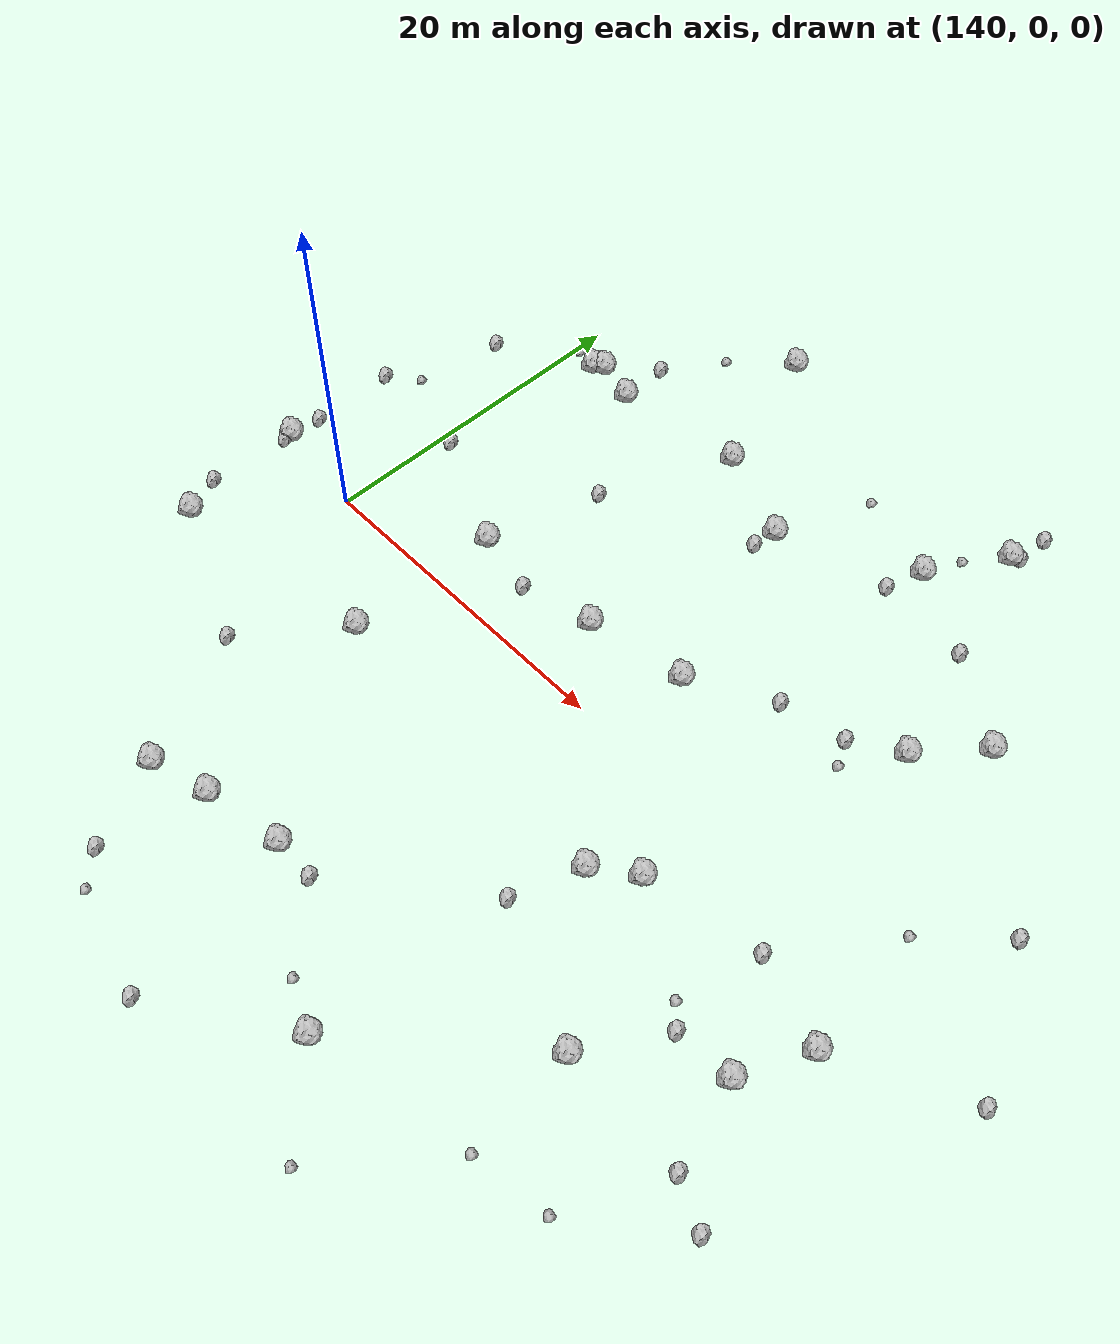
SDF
<sdf version="1.6">
 <world name="default">
  <include><uri>model://sun</uri></include>
  <model name="rock1_4_2">
   <include><uri>model://rock1</uri><pose>145.05575522781837 17.58735991776861 0.5 0 0 0</pose></include>
  </model>
  <model name="rock1_4_3">
   <include><uri>model://rock1</uri><pose>180.37702122393236 -9.30317015053728 0.5 0 0 0</pose></include>
  </model>
  <model name="rock1_4_4">
   <include><uri>model://rock1</uri><pose>150.79813441896175 -17.752827099190586 0.5 0 0 0</pose></include>
  </model>
  <model name="rock1_4_5">
   <include><uri>model://rock1</uri><pose>165.08276488820587 -22.341430315111523 0.5 0 0 0</pose></include>
  </model>
  <model name="rock1_4_6">
   <include><uri>model://rock1</uri><pose>173.9305961576893 10.408725925086145 0.5 0 0 0</pose></include>
  </model>
  <model name="rock1_4_7">
   <include><uri>model://rock1</uri><pose>167.40127897388797 -6.554167059590959 0.5 0 0 0</pose></include>
  </model>
  <model name="rock1_4_8">
   <include><uri>model://rock1</uri><pose>155.6771831454854 -16.90790979193177 0.5 0 0 0</pose></include>
  </model>
  <model name="rock1_4_9">
   <include><uri>model://rock1</uri><pose>153.04713827648283 18.592961131113462 0.5 0 0 0</pose></include>
  </model>
  <model name="rock1_4_10">
   <include><uri>model://rock1</uri><pose>147.19976830188776 -18.71143634331915 0.5 0 0 0</pose></include>
  </model>
  <model name="rock1_4_11">
   <include><uri>model://rock1</uri><pose>147.5923310190738 -5.334490372366723 0.5 0 0 0</pose></include>
  </model>
  <model name="rock1_4_12">
   <include><uri>model://rock1</uri><pose>169.10893010115478 24.66134120700724 0.5 0 0 0</pose></include>
  </model>
  <model name="rock1_4_13">
   <include><uri>model://rock1</uri><pose>147.85737318148412 4.020662864241061 0.5 0 0 0</pose></include>
  </model>
  <model name="rock1_4_14">
   <include><uri>model://rock1</uri><pose>166.43004843763785 20.24064888439471 0.5 0 0 0</pose></include>
  </model>
  <model name="rock1_4_15">
   <include><uri>model://rock1</uri><pose>169.74700443204713 -4.805861243522244 0.5 0 0 0</pose></include>
  </model>
  <model name="rock1_4_16">
   <include><uri>model://rock1</uri><pose>133.73264732210075 0.9279420497621089 0.5 0 0 0</pose></include>
  </model>
  <model name="rock1_4_17">
   <include><uri>model://rock1</uri><pose>156.23852200725054 4.207615201311107 0.5 0 0 0</pose></include>
  </model>
  <model name="rock1_4_18">
   <include><uri>model://rock1</uri><pose>150.31061322342515 26.984189056214788 0.5 0 0 0</pose></include>
  </model>
  <model name="rock1_4_19">
   <include><uri>model://rock1</uri><pose>141.87665724861773 17.843716909434583 0.5 0 0 0</pose></include>
  </model>
  <model name="rock1_4_20">
   <include><uri>model://rock1</uri><pose>176.79910431997013 13.882667820935865 0.5 0 0 0</pose></include>
  </model>
  <model name="rock1_4_21">
   <include><uri>model://rock1</uri><pose>182.13538107820358 -5.35542914708266 0.5 0 0 0</pose></include>
  </model>
  <model name="rock1_4_22">
   <include><uri>model://rock1</uri><pose>142.43169112469488 18.269674866835658 0.5 0 0 0</pose></include>
  </model>
  <model name="rock1_4_23">
   <include><uri>model://rock1</uri><pose>158.7128254010412 16.315598399079434 0.5 0 0 0</pose></include>
  </model>
  <model name="rock1_4_24">
   <include><uri>model://rock1</uri><pose>174.2039477241246 -14.023712475516433 0.5 0 0 0</pose></include>
  </model>
  <model name="rock1_4_25">
   <include><uri>model://rock1</uri><pose>162.31709201130843 5.246420683270976 0.5 0 0 0</pose></include>
  </model>
  <model name="rock1_4_26">
   <include><uri>model://rock1</uri><pose>134.49290726423916 -6.961653552030928 0.5 0 0 0</pose></include>
  </model>
  <model name="rock2_4_0">
   <include><uri>model://rock2</uri><pose>149.74214206856425 10.953456955177522 0.3 0 0 0</pose></include>
  </model>
  <model name="rock2_4_1">
   <include><uri>model://rock2</uri><pose>184.9167843664016 6.217402446600417 0.3 0 0 0</pose></include>
  </model>
  <model name="rock2_4_2">
   <include><uri>model://rock2</uri><pose>169.5557137458531 24.98692216720731 0.3 0 0 0</pose></include>
  </model>
  <model name="rock2_4_3">
   <include><uri>model://rock2</uri><pose>133.94325775699014 2.8341005167055826 0.3 0 0 0</pose></include>
  </model>
  <model name="rock2_4_4">
   <include><uri>model://rock2</uri><pose>167.1291859580395 7.927110289101748 0.3 0 0 0</pose></include>
  </model>
  <model name="rock2_4_5">
   <include><uri>model://rock2</uri><pose>133.56427442344017 -4.680058692409357 0.3 0 0 0</pose></include>
  </model>
  <model name="rock2_4_6">
   <include><uri>model://rock2</uri><pose>144.99824015099048 20.60333560922861 0.3 0 0 0</pose></include>
  </model>
  <model name="rock2_4_7">
   <include><uri>model://rock2</uri><pose>157.67793849990153 -27.34325720639478 0.3 0 0 0</pose></include>
  </model>
  <model name="rock2_4_8">
   <include><uri>model://rock2</uri><pose>189.49182642784078 -1.7161944207407842 0.3 0 0 0</pose></include>
  </model>
  <model name="rock2_4_9">
   <include><uri>model://rock2</uri><pose>184.63264512846862 -15.579182053084264 0.3 0 0 0</pose></include>
  </model>
  <model name="rock2_4_10">
   <include><uri>model://rock2</uri><pose>158.31045241446554 -16.997193719079952 0.3 0 0 0</pose></include>
  </model>
  <model name="rock2_4_11">
   <include><uri>model://rock2</uri><pose>171.56110273999832 17.401807177313906 0.3 0 0 0</pose></include>
  </model>
  <model name="rock2_4_12">
   <include><uri>model://rock2</uri><pose>165.74568891360812 17.954071934424107 0.3 0 0 0</pose></include>
  </model>
  <model name="rock2_4_13">
   <include><uri>model://rock2</uri><pose>143.33275155631023 -10.96263797181441 0.3 0 0 0</pose></include>
  </model>
  <model name="rock2_4_14">
   <include><uri>model://rock2</uri><pose>171.11674557045862 8.676251653415825 0.3 0 0 0</pose></include>
  </model>
  <model name="rock2_4_15">
   <include><uri>model://rock2</uri><pose>181.91118626349018 -14.315372356214471 0.3 0 0 0</pose></include>
  </model>
  <model name="rock2_4_16">
   <include><uri>model://rock2</uri><pose>140.75644106715134 7.331405648239553 0.3 0 0 0</pose></include>
  </model>
  <model name="rock2_4_17">
   <include><uri>model://rock2</uri><pose>166.03414962067552 -10.564948431459243 0.3 0 0 0</pose></include>
  </model>
  <model name="rock2_4_18">
   <include><uri>model://rock2</uri><pose>176.88074396088302 -9.487451074820296 0.3 0 0 0</pose></include>
  </model>
  <model name="rock2_4_19">
   <include><uri>model://rock2</uri><pose>169.6316514548064 27.03447310728518 0.3 0 0 0</pose></include>
  </model>
  <model name="rock2_4_20">
   <include><uri>model://rock2</uri><pose>176.8451141283861 -3.546732270413589 0.3 0 0 0</pose></include>
  </model>
  <model name="rock2_4_21">
   <include><uri>model://rock2</uri><pose>136.40687851289462 14.771125419684004 0.3 0 0 0</pose></include>
  </model>
  <model name="rock2_4_22">
   <include><uri>model://rock2</uri><pose>149.56496404696944 -23.818927772419464 0.3 0 0 0</pose></include>
  </model>
  <model name="rock2_4_23">
   <include><uri>model://rock2</uri><pose>158.5353234657057 14.809988922533186 0.3 0 0 0</pose></include>
  </model>
  <model name="rock2_4_24">
   <include><uri>model://rock2</uri><pose>133.87194103989557 8.018114547975166 0.3 0 0 0</pose></include>
  </model>
  <model name="rock2_4_25">
   <include><uri>model://rock2</uri><pose>133.8365828346148 0.3405010578421397 0.3 0 0 0</pose></include>
  </model>
  <model name="rock2_4_26">
   <include><uri>model://rock2</uri><pose>151.80651068246607 3.1862704037751968 0.3 0 0 0</pose></include>
  </model>
  <model name="rock3_4_0">
   <include><uri>model://rock3</uri><pose>179.36031406135308 -19.947498577873986 0.2 0 0 0</pose></include>
  </model>
  <model name="rock3_4_1">
   <include><uri>model://rock3</uri><pose>147.16783415247718 24.039323604436134 0.2 0 0 0</pose></include>
  </model>
  <model name="rock3_4_2">
   <include><uri>model://rock3</uri><pose>174.7987676171117 -20.587535217017876 0.2 0 0 0</pose></include>
  </model>
  <model name="rock3_4_3">
   <include><uri>model://rock3</uri><pose>181.07980997068643 2.3788886648099776 0.2 0 0 0</pose></include>
  </model>
  <model name="rock3_4_4">
   <include><uri>model://rock3</uri><pose>160.94435417542877 21.986874766089386 0.2 0 0 0</pose></include>
  </model>
  <model name="rock3_4_5">
   <include><uri>model://rock3</uri><pose>171.91249611420744 7.186358029470469 0.2 0 0 0</pose></include>
  </model>
  <model name="rock3_4_6">
   <include><uri>model://rock3</uri><pose>162.16779891080756 -21.073959323945218 0.2 0 0 0</pose></include>
  </model>
  <model name="rock3_4_7">
   <include><uri>model://rock3</uri><pose>151.19623072595257 -25.60541268991117 0.2 0 0 0</pose></include>
  </model>
  <model name="rock3_4_8">
   <include><uri>model://rock3</uri><pose>135.54766228162714 9.409358982414304 0.2 0 0 0</pose></include>
  </model>
  <model name="rock3_4_9">
   <include><uri>model://rock3</uri><pose>175.7067975165475 -8.411566237142914 0.2 0 0 0</pose></include>
  </model>
  <model name="rock3_4_10">
   <include><uri>model://rock3</uri><pose>140.38306604158538 18.099042349734212 0.2 0 0 0</pose></include>
  </model>
  <model name="rock3_4_11">
   <include><uri>model://rock3</uri><pose>169.64236917380885 -26.973247922409204 0.2 0 0 0</pose></include>
  </model>
  <model name="rock3_4_12">
   <include><uri>model://rock3</uri><pose>167.3971415711749 22.441948309414506 0.2 0 0 0</pose></include>
  </model>
 </world>
</sdf>
